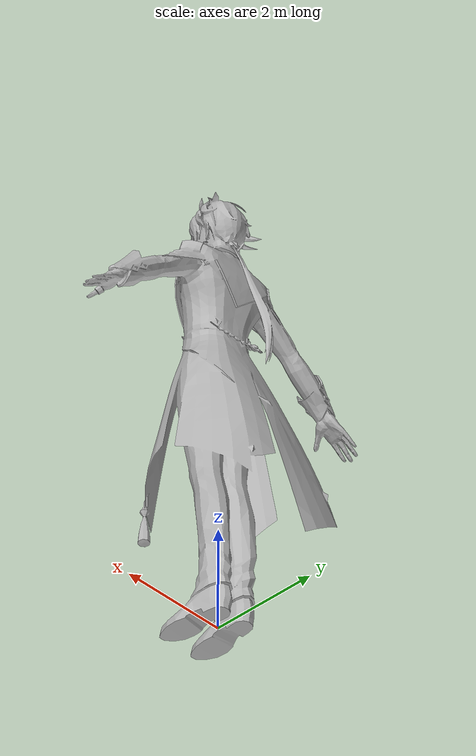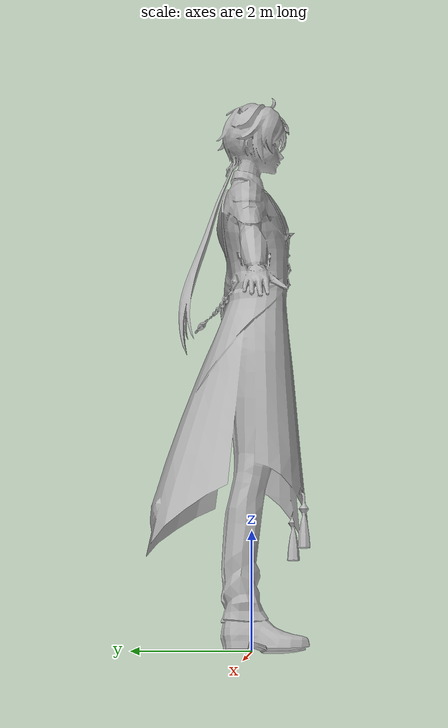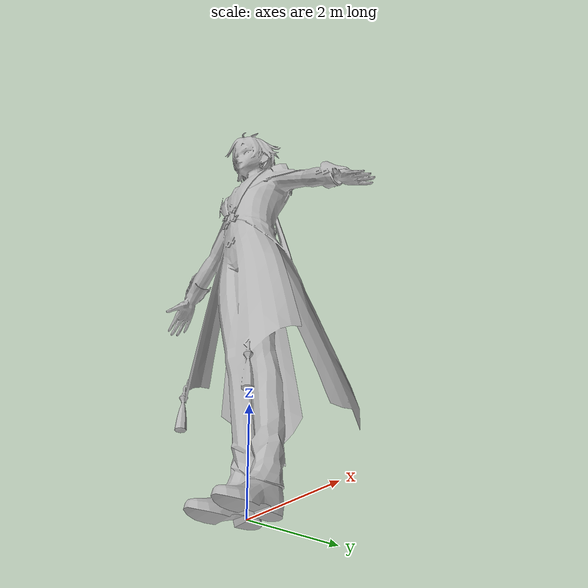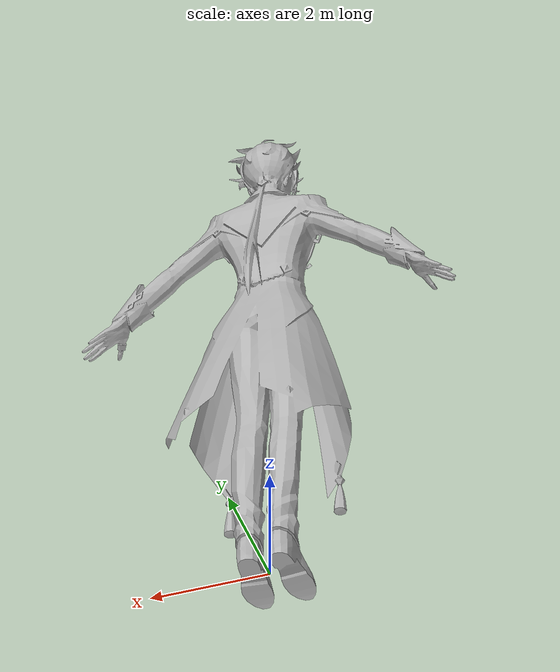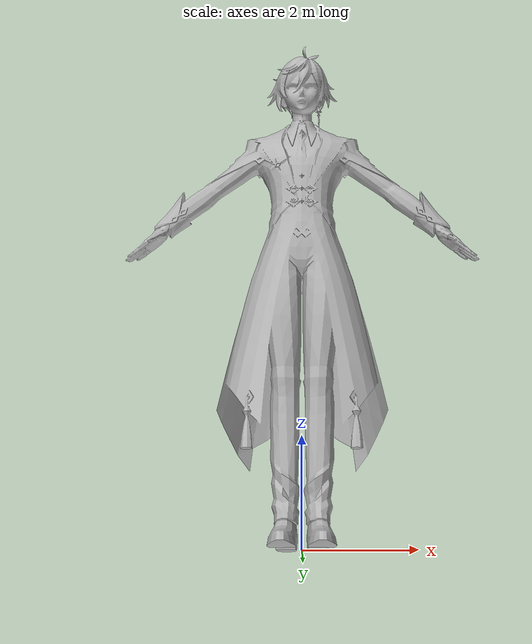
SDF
<?xml version="1.0" ?>
<sdf version="1.6">
  <model name="Zhongli">
    <static>true</static>
    <link name="zhongli">
      <visual name="visual">
        <geometry>
          <mesh>
            <uri>meshes/untitled.dae</uri>
            <scale>0.4 0.4 0.4</scale>
          </mesh>
        </geometry>
      </visual>
      <collision name="collision_0">
        <geometry>
          <mesh>
            <uri>meshes/untitled.dae</uri>
            <scale>0.4 0.4 0.4</scale>
          </mesh>
        </geometry>
      </collision>
    </link>
  </model>
</sdf>
